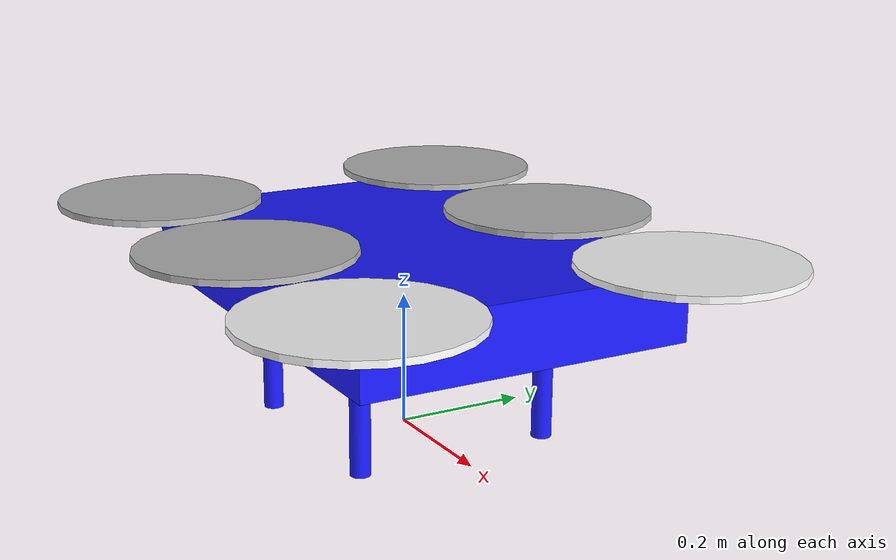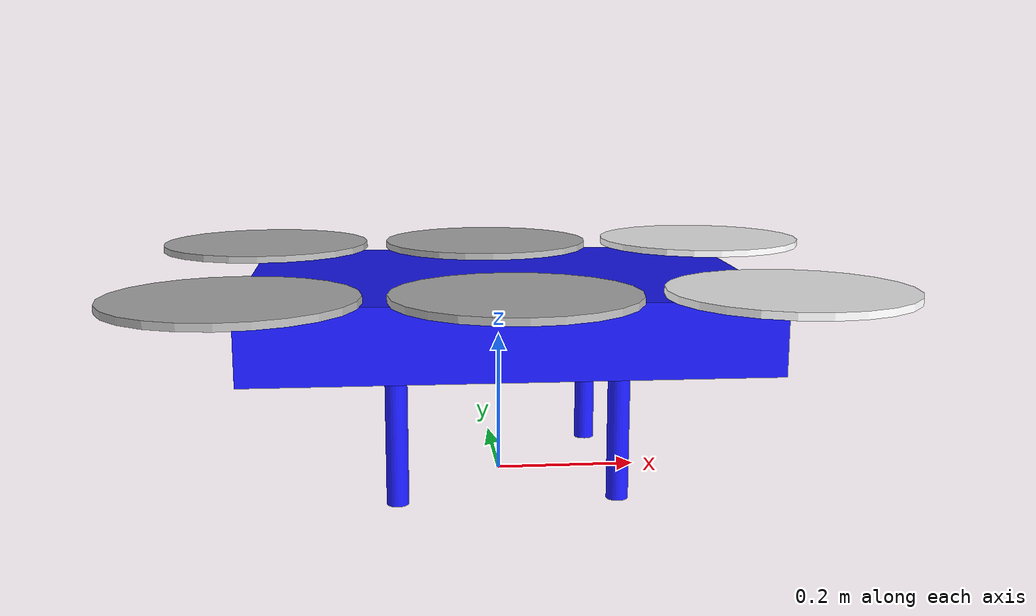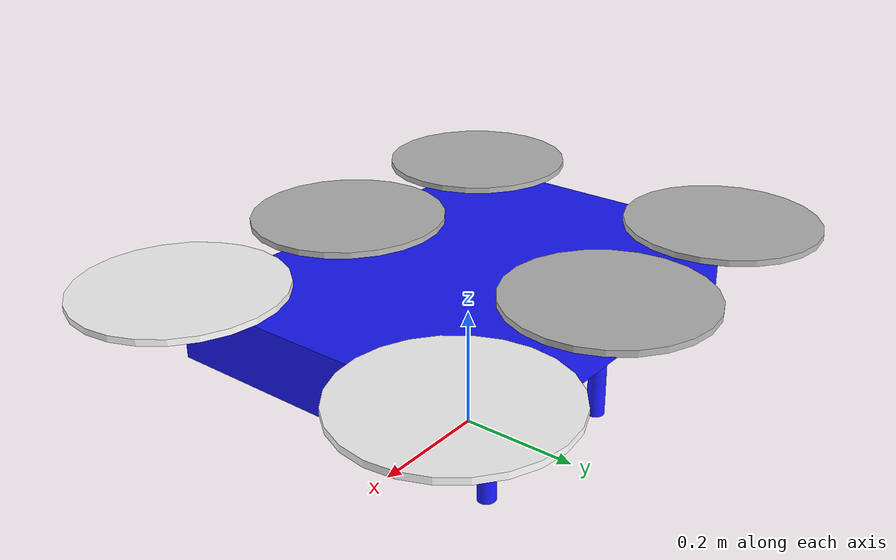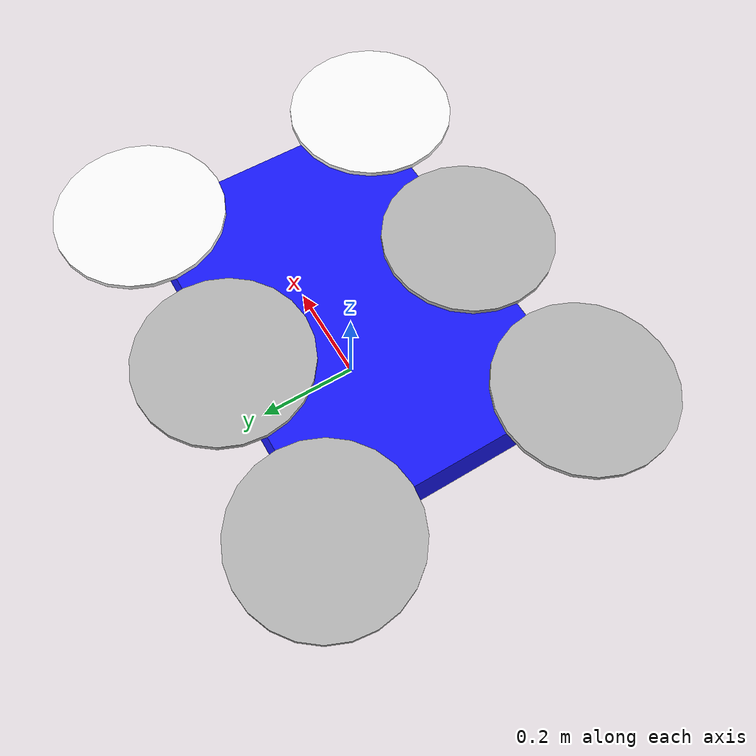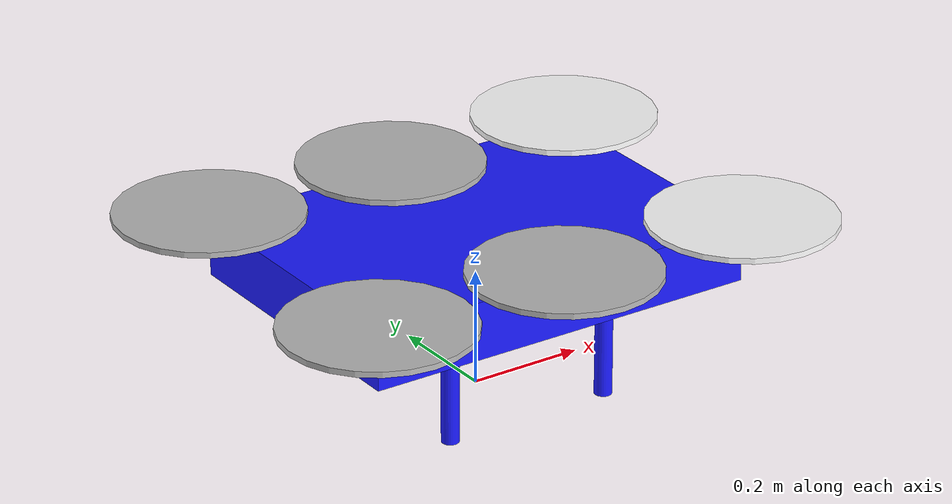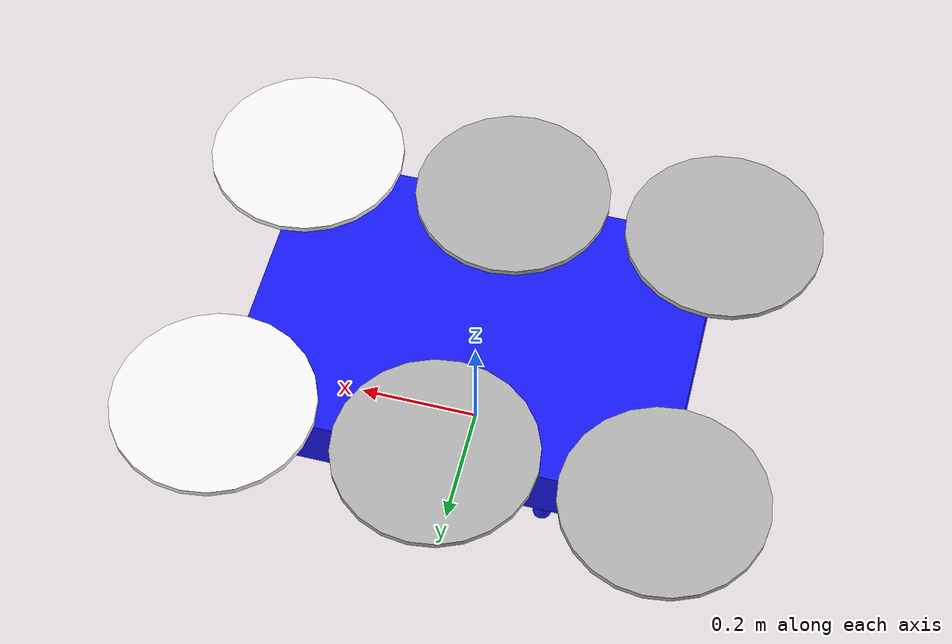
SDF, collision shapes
<?xml version="1.0" encoding="UTF-8"?>
<sdf version='1.9'>
  <model name='hm3_drone'>
    <pose>0 0 .24 0 0 0</pose>
    <self_collide>false</self_collide>
    <static>false</static>

    <link name="base_link">
      <inertial>
        <mass>2.0</mass>
        <inertia>
          <ixx>0.15</ixx>
          <ixy>0</ixy>
          <ixz>0</ixz>
          <iyy>0.15</iyy>
          <iyz>0</iyz>
          <izz>0.25</izz>
        </inertia>
      </inertial>
      <gravity>true</gravity>
      <velocity_decay/>

      <visual name="base_link_visual">
        <pose>0 0 0 0 0 0</pose>
        <geometry>
          <box>
            <size>0.70 0.50 0.10</size>
          </box>
        </geometry>
        <material>
          <ambient>0.1 0.1 1.0 1.0</ambient>
          <diffuse>0.1 0.1 1.0 1.0</diffuse>
          <specular>0.5 0.5 0.5 1.0</specular>
        </material>
      </visual>

      <collision name="base_link_collision">
        <pose>0 0 0 0 0 0</pose>
        <geometry>
          <box>
            <size>0.70 0.50 0.10</size>
          </box>
        </geometry>
      </collision>

      <visual name="leg_1_visual">
        <pose>0.15 -0.15 -0.12 0 0 0</pose>
        <geometry>
          <cylinder><radius>0.015</radius><length>0.24</length></cylinder>
        </geometry>
        <material>
          <diffuse>0.35 0.6 0.35 1.0</diffuse>
        </material>
      </visual>
      <collision name="leg_1_collision">
        <pose>0.15 -0.15 -0.12 0 0 0</pose>
        <geometry>
          <cylinder><radius>0.015</radius><length>0.24</length></cylinder>
        </geometry>
      </collision>

      <visual name="leg_2_visual">
        <pose>-0.15 0.15 -0.12 0 0 0</pose>
        <geometry>
          <cylinder><radius>0.015</radius><length>0.24</length></cylinder>
        </geometry>
        <material>
          <diffuse>0.35 0.6 0.35 1.0</diffuse>
        </material>
      </visual>
      <collision name="leg_2_collision">
        <pose>-0.15 0.15 -0.12 0 0 0</pose>
        <geometry>
          <cylinder><radius>0.015</radius><length>0.24</length></cylinder>
        </geometry>
      </collision>

      <visual name="leg_3_visual">
        <pose>0.15 0.15 -0.12 0 0 0</pose>
        <geometry>
          <cylinder><radius>0.015</radius><length>0.24</length></cylinder>
        </geometry>
        <material>
          <diffuse>0.35 0.6 0.35 1.0</diffuse>
        </material>
      </visual>
      <collision name="leg_3_collision">
        <pose>0.15 0.15 -0.12 0 0 0</pose>
        <geometry>
          <cylinder><radius>0.015</radius><length>0.24</length></cylinder>
        </geometry>
      </collision>

      <visual name="leg_4_visual">
        <pose>-0.15 -0.15 -0.12 0 0 0</pose>
        <geometry>
          <cylinder><radius>0.015</radius><length>0.24</length></cylinder>
        </geometry>
        <material>
          <diffuse>0.35 0.6 0.35 1.0</diffuse>
        </material>
      </visual>
      <collision name="leg_4_collision">
        <pose>-0.15 -0.15 -0.12 0 0 0</pose>
        <geometry>
          <cylinder><radius>0.015</radius><length>0.24</length></cylinder>
        </geometry>
      </collision>

      <sensor name="air_pressure_sensor" type="air_pressure">
        <always_on>1</always_on><update_rate>50</update_rate>
        <air_pressure>
          <pressure>
            <noise type="gaussian">
              <mean>0</mean><stddev>3</stddev>
            </noise>
          </pressure>
        </air_pressure>
      </sensor>
      <sensor name="magnetometer_sensor" type="magnetometer">
        <always_on>1</always_on><update_rate>100</update_rate>
        <magnetometer>
          <x><noise type="gaussian"><stddev>0.0001</stddev></noise></x>
          <y><noise type="gaussian"><stddev>0.0001</stddev></noise></y>
          <z><noise type="gaussian"><stddev>0.0001</stddev></noise></z>
        </magnetometer>
      </sensor>
      <sensor name="imu_sensor" type="imu">
        <always_on>1</always_on><update_rate>250</update_rate>
        <imu>
          <angular_velocity>
            <x><noise type="gaussian"><mean>0.0</mean><stddev>0.00087</stddev></noise></x>
            <y><noise type="gaussian"><mean>0.0</mean><stddev>0.00087</stddev></noise></y>
            <z><noise type="gaussian"><mean>0.0</mean><stddev>0.00087</stddev></noise></z>
          </angular_velocity>
          <linear_acceleration>
            <x><noise type="gaussian"><mean>0.0</mean><stddev>0.00637</stddev></noise></x>
            <y><noise type="gaussian"><mean>0.0</mean><stddev>0.00637</stddev></noise></y>
            <z><noise type="gaussian"><mean>0.0</mean><stddev>0.00686</stddev></noise></z>
          </linear_acceleration>
        </imu>
      </sensor>
      <sensor name="navsat_sensor" type="navsat">
        <always_on>1</always_on><update_rate>30</update_rate>
      </sensor>
    </link>

    <link name="rotor_0">
      <pose>0.35 -0.25 0.06 0 0 0</pose>

      <inertial>
        <mass>0.016</mass>
        <inertia>
          <ixx>3.84e-07</ixx>
          <iyy>2.61e-05</iyy>
          <izz>2.64e-05</izz>
        </inertia>
      </inertial>
      <visual name="rotor_0_visual">
        <pose>-0.022 -0.146 -0.016 0 0 0</pose>
        <geometry>
          <mesh>
            <scale>0.85 0.85 0.85</scale>
            <uri>model://x500_base/meshes/1345_prop_ccw.stl</uri>
          </mesh>
        </geometry>
        <material><diffuse>1 1 1 1</diffuse></material>
      </visual>
      <collision name="rotor_0_collision">
        <geometry><cylinder><radius>0.16</radius><length>0.01</length></cylinder></geometry>
      </collision>
    </link>
    <joint name="rotor_0_joint" type="revolute">
      <parent>base_link</parent><child>rotor_0</child>
      <axis><xyz>0 0 1</xyz>
        <limit><lower>-1e16</lower><upper>1e16</upper></limit>
      </axis>
    </joint>

    <link name="rotor_1">
      <pose>-0.35 0.25 0.06 0 0 0</pose>

      <inertial>
        <mass>0.016</mass>
        <inertia>
          <ixx>3.84e-07</ixx>
          <iyy>2.61e-05</iyy>
          <izz>2.64e-05</izz>
        </inertia>
      </inertial>
      <visual name="rotor_1_visual">
        <pose>-0.022 -0.146 -0.016 0 0 0</pose>
        <geometry>
          <mesh>
            <scale>0.85 0.85 0.85</scale>
            <uri>model://x500_base/meshes/1345_prop_cw.stl</uri>
          </mesh>
        </geometry>
      </visual>
      <collision name="rotor_1_collision">
        <geometry><cylinder><radius>0.16</radius><length>0.01</length></cylinder></geometry>
      </collision>
    </link>
    <joint name="rotor_1_joint" type="revolute">
      <parent>base_link</parent><child>rotor_1</child>
      <axis><xyz>0 0 1</xyz>
        <limit><lower>-1e16</lower><upper>1e16</upper></limit>
      </axis>
    </joint>

    <link name="rotor_2">
      <pose>0.35 0.25 0.06 0 0 0</pose>

      <inertial>
        <mass>0.016</mass>
        <inertia>
          <ixx>3.84e-07</ixx>
          <iyy>2.61e-05</iyy>
          <izz>2.64e-05</izz>
        </inertia>
      </inertial>
      <visual name="rotor_2_visual">
        <pose>-0.022 -0.146 -0.016 0 0 0</pose>
        <geometry>
          <mesh>
            <scale>0.85 0.85 0.85</scale>
            <uri>model://x500_base/meshes/1345_prop_cw.stl</uri>
          </mesh>
        </geometry>
        <material><diffuse>1 1 1 1</diffuse></material>
      </visual>
      <collision name="rotor_2_collision">
        <geometry><cylinder><radius>0.16</radius><length>0.01</length></cylinder></geometry>
      </collision>
    </link>
    <joint name="rotor_2_joint" type="revolute">
      <parent>base_link</parent><child>rotor_2</child>
      <axis><xyz>0 0 1</xyz>
        <limit><lower>-1e16</lower><upper>1e16</upper></limit>
      </axis>
    </joint>

    <link name="rotor_3">
      <pose>-0.35 -0.25 0.06 0 0 0</pose>

      <inertial>
        <mass>0.016</mass>
        <inertia>
          <ixx>3.84e-07</ixx>
          <iyy>2.61e-05</iyy>
          <izz>2.64e-05</izz>
        </inertia>
      </inertial>
      <visual name="rotor_3_visual">
        <pose>-0.022 -0.146 -0.016 0 0 0</pose>
        <geometry>
          <mesh>
            <scale>0.85 0.85 0.85</scale>
            <uri>model://x500_base/meshes/1345_prop_ccw.stl</uri>
          </mesh>
        </geometry>
      </visual>
      <collision name="rotor_3_collision">
        <geometry><cylinder><radius>0.16</radius><length>0.01</length></cylinder></geometry>
      </collision>
    </link>
    <joint name="rotor_3_joint" type="revolute">
      <parent>base_link</parent><child>rotor_3</child>
      <axis><xyz>0 0 1</xyz>
        <limit><lower>-1e16</lower><upper>1e16</upper></limit>
      </axis>
    </joint>

    <link name="rotor_4">
      <pose>0 0.25 0.06 0 0 0</pose>

      <inertial>
        <mass>0.016</mass>
        <inertia>
          <ixx>3.84e-07</ixx>
          <iyy>2.61e-05</iyy>
          <izz>2.64e-05</izz>
        </inertia>
      </inertial>
      <visual name="rotor_4_visual">
        <pose>-0.022 -0.146 -0.016 0 0 0</pose>
        <geometry>
          <mesh>
            <scale>0.85 0.85 0.85</scale>
            <uri>model://x500_base/meshes/1345_prop_ccw.stl</uri>
          </mesh>
        </geometry>
      </visual>
      <collision name="rotor_4_collision">
        <geometry><cylinder><radius>0.16</radius><length>0.01</length></cylinder></geometry>
      </collision>
    </link>
    <joint name="rotor_4_joint" type="revolute">
      <parent>base_link</parent><child>rotor_4</child>
      <axis><xyz>0 0 1</xyz>
        <limit><lower>-1e16</lower><upper>1e16</upper></limit>
      </axis>
    </joint>

    <link name="rotor_5">
      <pose>0 -0.25 0.06 0 0 0</pose>

      <inertial>
        <mass>0.016</mass>
        <inertia>
          <ixx>3.84e-07</ixx>
          <iyy>2.61e-05</iyy>
          <izz>2.64e-05</izz>
        </inertia>
      </inertial>
      <visual name="rotor_5_visual">
        <pose>-0.022 -0.146 -0.016 0 0 0</pose>
        <geometry>
          <mesh>
            <scale>0.85 0.85 0.85</scale>
            <uri>model://x500_base/meshes/1345_prop_cw.stl</uri>
          </mesh>
        </geometry>
      </visual>
      <collision name="rotor_5_collision">
        <geometry><cylinder><radius>0.16</radius><length>0.01</length></cylinder></geometry>
      </collision>
    </link>
    <joint name="rotor_5_joint" type="revolute">
      <parent>base_link</parent><child>rotor_5</child>
      <axis><xyz>0 0 1</xyz>
        <limit><lower>-1e16</lower><upper>1e16</upper></limit>
      </axis>
    </joint>

    <plugin filename="gz-sim-multicopter-motor-model-system" name="gz::sim::systems::MulticopterMotorModel">
      <jointName>rotor_0_joint</jointName><linkName>rotor_0</linkName><turningDirection>ccw</turningDirection>
      <timeConstantUp>0.0125</timeConstantUp><timeConstantDown>0.025</timeConstantDown><maxRotVelocity>1000.0</maxRotVelocity><motorConstant>8.54858e-06</motorConstant><momentConstant>0.016</momentConstant><commandSubTopic>command/motor_speed</commandSubTopic><motorNumber>0</motorNumber><rotorDragCoefficient>8.06428e-05</rotorDragCoefficient><rollingMomentCoefficient>1e-06</rollingMomentCoefficient><rotorVelocitySlowdownSim>10</rotorVelocitySlowdownSim><motorType>velocity</motorType>
    </plugin>
    <plugin filename="gz-sim-multicopter-motor-model-system" name="gz::sim::systems::MulticopterMotorModel">
      <jointName>rotor_1_joint</jointName><linkName>rotor_1</linkName><turningDirection>cw</turningDirection>
      <timeConstantUp>0.0125</timeConstantUp><timeConstantDown>0.025</timeConstantDown><maxRotVelocity>1000.0</maxRotVelocity><motorConstant>8.54858e-06</motorConstant><momentConstant>0.016</momentConstant><commandSubTopic>command/motor_speed</commandSubTopic><motorNumber>1</motorNumber><rotorDragCoefficient>8.06428e-05</rotorDragCoefficient><rollingMomentCoefficient>1e-06</rollingMomentCoefficient><rotorVelocitySlowdownSim>10</rotorVelocitySlowdownSim><motorType>velocity</motorType>
    </plugin>
    <plugin filename="gz-sim-multicopter-motor-model-system" name="gz::sim::systems::MulticopterMotorModel">
      <jointName>rotor_2_joint</jointName><linkName>rotor_2</linkName><turningDirection>cw</turningDirection>
      <timeConstantUp>0.0125</timeConstantUp><timeConstantDown>0.025</timeConstantDown><maxRotVelocity>1000.0</maxRotVelocity><motorConstant>8.54858e-06</motorConstant><momentConstant>0.016</momentConstant><commandSubTopic>command/motor_speed</commandSubTopic><motorNumber>2</motorNumber><rotorDragCoefficient>8.06428e-05</rotorDragCoefficient><rollingMomentCoefficient>1e-06</rollingMomentCoefficient><rotorVelocitySlowdownSim>10</rotorVelocitySlowdownSim><motorType>velocity</motorType>
    </plugin>
    <plugin filename="gz-sim-multicopter-motor-model-system" name="gz::sim::systems::MulticopterMotorModel">
      <jointName>rotor_3_joint</jointName><linkName>rotor_3</linkName><turningDirection>ccw</turningDirection>
      <timeConstantUp>0.0125</timeConstantUp><timeConstantDown>0.025</timeConstantDown><maxRotVelocity>1000.0</maxRotVelocity><motorConstant>8.54858e-06</motorConstant><momentConstant>0.016</momentConstant><commandSubTopic>command/motor_speed</commandSubTopic><motorNumber>3</motorNumber><rotorDragCoefficient>8.06428e-05</rotorDragCoefficient><rollingMomentCoefficient>1e-06</rollingMomentCoefficient><rotorVelocitySlowdownSim>10</rotorVelocitySlowdownSim><motorType>velocity</motorType>
    </plugin>
    <plugin filename="gz-sim-multicopter-motor-model-system" name="gz::sim::systems::MulticopterMotorModel">
      <jointName>rotor_4_joint</jointName><linkName>rotor_4</linkName><turningDirection>ccw</turningDirection>
      <timeConstantUp>0.0125</timeConstantUp><timeConstantDown>0.025</timeConstantDown><maxRotVelocity>1000.0</maxRotVelocity><motorConstant>8.54858e-06</motorConstant><momentConstant>0.016</momentConstant><commandSubTopic>command/motor_speed</commandSubTopic><motorNumber>4</motorNumber><rotorDragCoefficient>8.06428e-05</rotorDragCoefficient><rollingMomentCoefficient>1e-06</rollingMomentCoefficient><rotorVelocitySlowdownSim>10</rotorVelocitySlowdownSim><motorType>velocity</motorType>
    </plugin>
    <plugin filename="gz-sim-multicopter-motor-model-system" name="gz::sim::systems::MulticopterMotorModel">
      <jointName>rotor_5_joint</jointName><linkName>rotor_5</linkName><turningDirection>cw</turningDirection>
      <timeConstantUp>0.0125</timeConstantUp><timeConstantDown>0.025</timeConstantDown><maxRotVelocity>1000.0</maxRotVelocity><motorConstant>8.54858e-06</motorConstant><momentConstant>0.016</momentConstant><commandSubTopic>command/motor_speed</commandSubTopic><motorNumber>5</motorNumber><rotorDragCoefficient>8.06428e-05</rotorDragCoefficient><rollingMomentCoefficient>1e-06</rollingMomentCoefficient><rotorVelocitySlowdownSim>10</rotorVelocitySlowdownSim><motorType>velocity</motorType>
    </plugin>
  </model>
</sdf>
